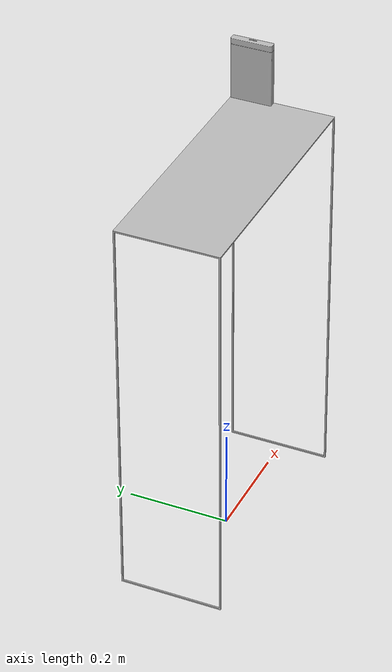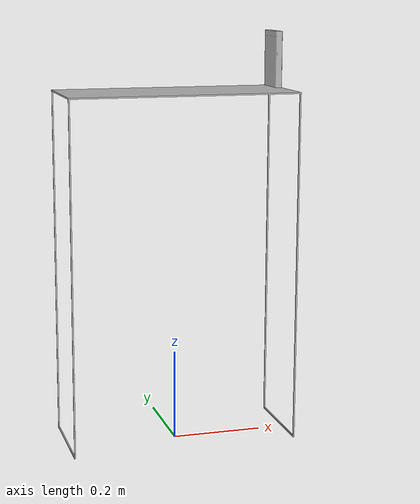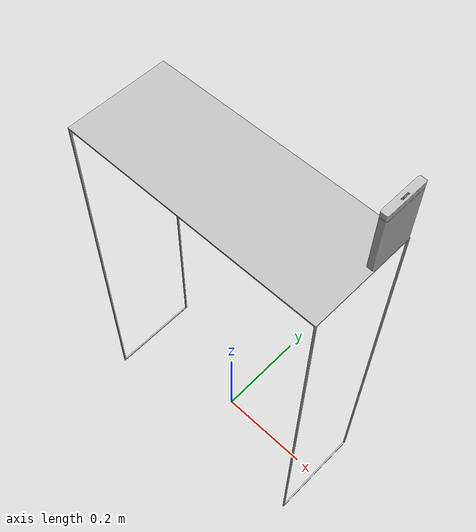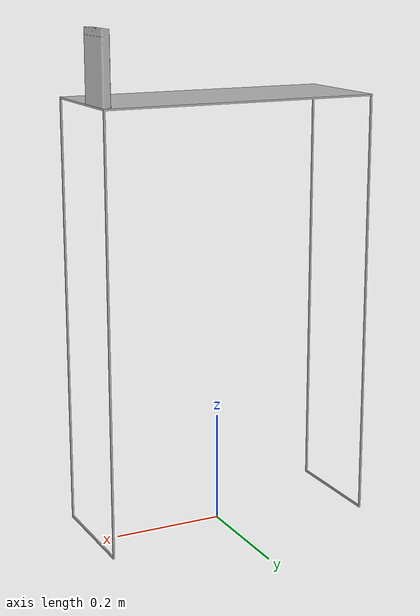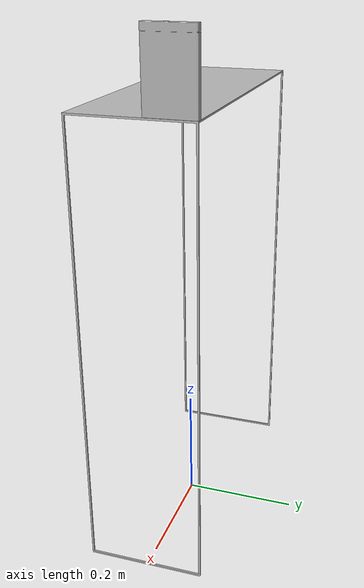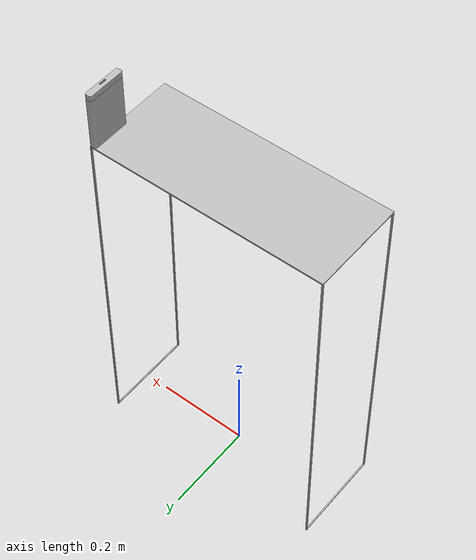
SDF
<?xml version="1.0"?>

<sdf version='1.7'>
  <model name='table_description'>
    <link name='base_link'>
      <inertial>
        <pose>0.182849 0.044773 0.816788 0 -0 0</pose>
        <mass>1.33785</mass>
        <inertia>
          <ixx>0.0136056</ixx>
          <ixy>-0.00360265</ixy>
          <ixz>-0.00624161</ixz>
          <iyy>0.0338032</iyy>
          <iyz>-0.00152841</iyz>
          <izz>0.0256068</izz>
        </inertia>
      </inertial>
      <collision name='base_link_collision'>
        <pose>0 0 0 0 0 0</pose>
        <geometry>
          <mesh>
            <scale>1 1 1</scale>
            <uri>model://table_description/meshes/base_link.STL</uri>
          </mesh>
        </geometry>
      </collision>
      <collision name='base_link_fixed_joint_lump__hard_disk_link_collision_1'>
        <pose>0.243 0.0595 0.8425 0 -0 0</pose>
        <geometry>
          <mesh>
            <scale>1 1 1</scale>
            <uri>model://table_description/meshes/hard_disk_link.STL</uri>
          </mesh>
        </geometry>
      </collision>
      <visual name='base_link_visual'>
        <pose>0 0 0 0 -0 0</pose>
        <geometry>
          <mesh>
            <scale>1 1 1</scale>
            <uri>model://table_description/meshes/base_link.STL</uri>
          </mesh>
        </geometry>
      </visual>
      <visual name='base_link_fixed_joint_lump__hard_disk_link_visual_1'>
        <pose>0.243 0.0595 0.8425 0 -0 0</pose>
        <geometry>
          <mesh>
            <scale>1 1 1</scale>
            <uri>model://table_description/meshes/hard_disk_link.STL</uri>
          </mesh>
        </geometry>
      </visual>
    </link>
    <frame name='hard_disk_joint' attached_to='base_link'>
      <pose>0.243 0.0595 0.8425 0 -0 0</pose>
    </frame>
    <frame name='hard_disk_link' attached_to='hard_disk_joint'/>
  </model>
</sdf>
